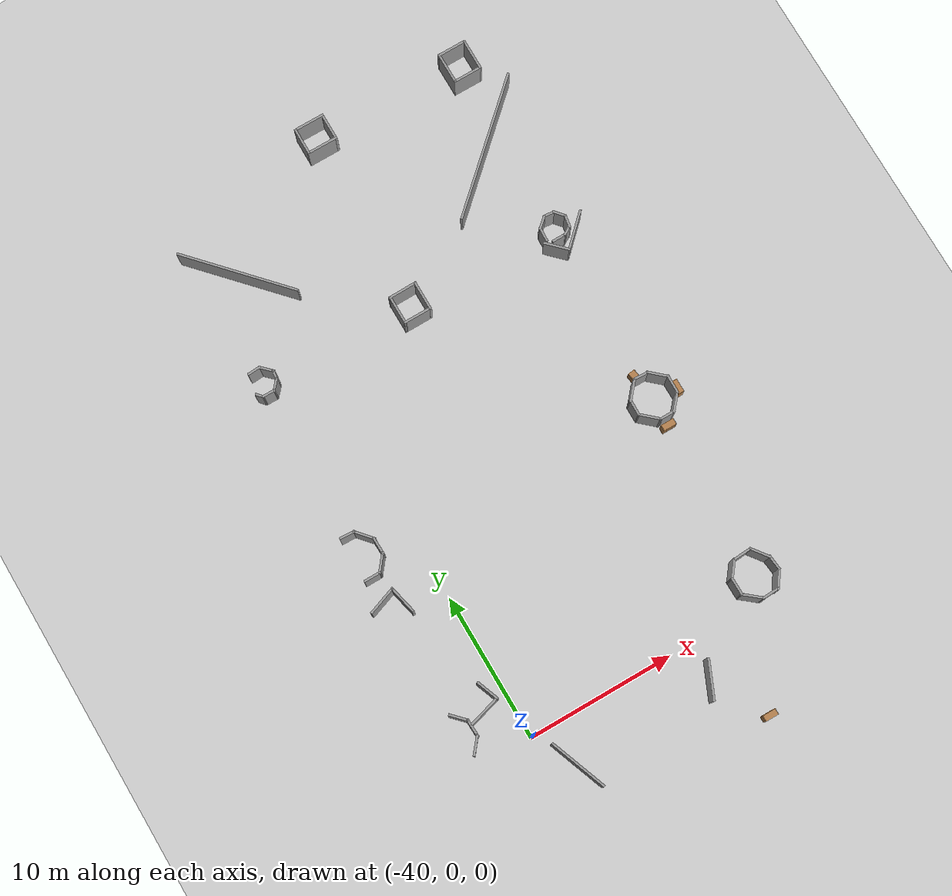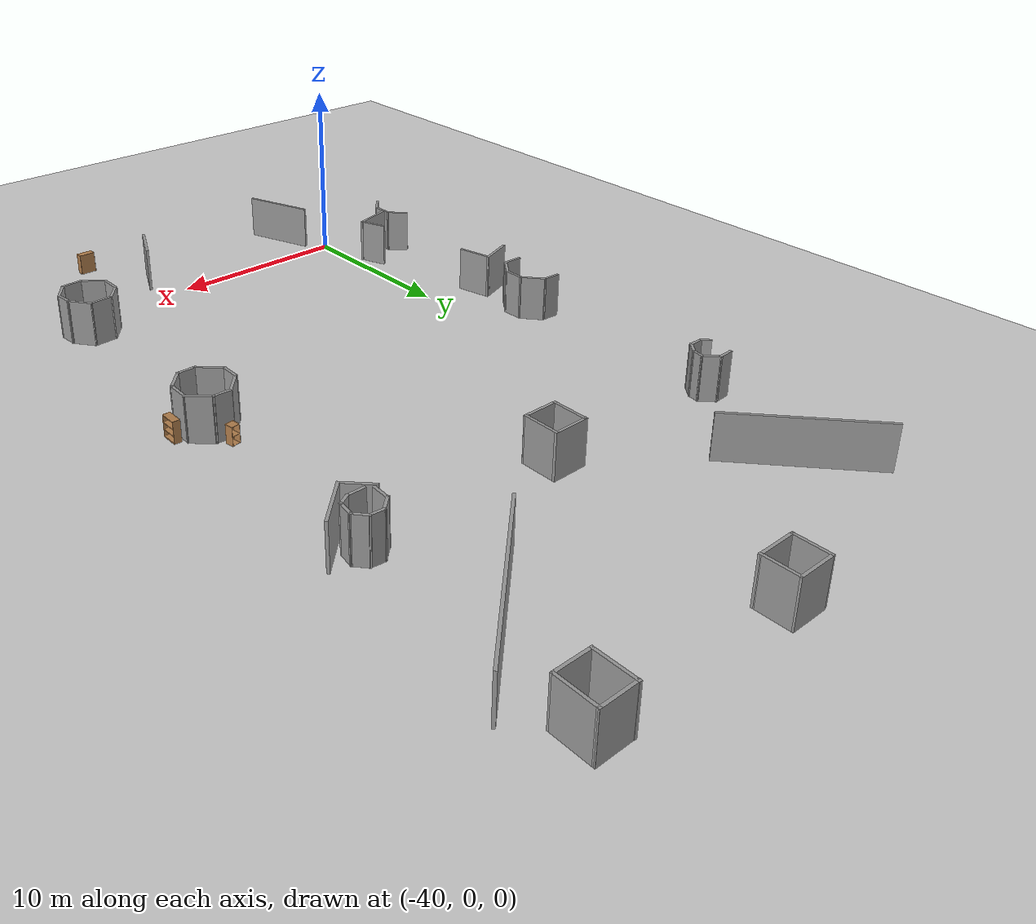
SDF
<sdf version="1.6">
 <world name="default">
  <model name="ground_plane">
   <static>1</static>
   <link name="link">
    <collision name="collision">
     <geometry><plane><normal>0 0 1</normal><size>100 100</size></plane></geometry>
     <surface><friction><ode><mu>100</mu><mu2>50</mu2></ode></friction></surface>
    </collision>
    <visual name="visual">
     <cast_shadows>0</cast_shadows>
     <geometry><plane><normal>0 0 1</normal><size>100 100</size></plane></geometry>
     <material>
      <script><uri>file://media/materials/scripts/gazebo.material</uri><name>Gazebo/Grey</name></script>
     </material>
    </visual>
   </link>
  </model>
  <model name="mall_new_reduce_size">
   <pose>-6.8092 7.5529 0 0 -0 0</pose>
   <link name="Wall_107">
    <collision name="Wall_107_Collision">
     <geometry><box><size>0.940533 0.15 2.5</size></box></geometry>
     <pose>0 0 1.25 0 -0 0</pose>
    </collision>
    <visual name="Wall_107_Visual">
     <pose>0 0 1.25 0 -0 0</pose>
     <geometry><box><size>0.940533 0.15 2.5</size></box></geometry>
     <material>
      <script><uri>file://media/materials/scripts/gazebo.material</uri><name>Gazebo/Grey</name></script>
      <ambient>1 1 1 1</ambient>
     </material>
     <meta><layer>0</layer></meta>
    </visual>
    <pose>-36.633 20.7072 0 0 -0 0.04939</pose>
   </link>
   <link name="Wall_108">
    <collision name="Wall_108_Collision">
     <geometry><box><size>1.04338 0.15 2.5</size></box></geometry>
     <pose>0 0 1.25 0 -0 0</pose>
    </collision>
    <visual name="Wall_108_Visual">
     <pose>0 0 1.25 0 -0 0</pose>
     <geometry><box><size>1.04338 0.15 2.5</size></box></geometry>
     <material>
      <script><uri>file://media/materials/scripts/gazebo.material</uri><name>Gazebo/Grey</name></script>
      <ambient>1 1 1 1</ambient>
     </material>
     <meta><layer>0</layer></meta>
    </visual>
    <pose>-35.9265 20.4122 0 0 -0 -0.780985</pose>
   </link>
   <link name="Wall_109">
    <collision name="Wall_109_Collision">
     <geometry><box><size>0.676427 0.15 2.5</size></box></geometry>
     <pose>0 0 1.25 0 -0 0</pose>
    </collision>
    <visual name="Wall_109_Visual">
     <pose>0 0 1.25 0 -0 0</pose>
     <geometry><box><size>0.676427 0.15 2.5</size></box></geometry>
     <material>
      <script><uri>file://media/materials/scripts/gazebo.material</uri><name>Gazebo/Grey</name></script>
      <ambient>1 1 1 1</ambient>
     </material>
     <meta><layer>0</layer></meta>
    </visual>
    <pose>-35.6455 19.8364 0 0 -0 -1.68757</pose>
   </link>
   <link name="Wall_110">
    <collision name="Wall_110_Collision">
     <geometry><box><size>0.945582 0.15 2.5</size></box></geometry>
     <pose>0 0 1.25 0 -0 0</pose>
    </collision>
    <visual name="Wall_110_Visual">
     <pose>0 0 1.25 0 -0 0</pose>
     <geometry><box><size>0.945582 0.15 2.5</size></box></geometry>
     <material>
      <script><uri>file://media/materials/scripts/gazebo.material</uri><name>Gazebo/Grey</name></script>
      <ambient>1 1 1 1</ambient>
     </material>
     <meta><layer>0</layer></meta>
    </visual>
    <pose>-35.9305 19.2738 0 0 -0 -2.28278</pose>
   </link>
   <link name="Wall_111">
    <collision name="Wall_111_Collision">
     <geometry><box><size>0.906136 0.15 2.5</size></box></geometry>
     <pose>0 0 1.25 0 -0 0</pose>
    </collision>
    <visual name="Wall_111_Visual">
     <pose>0 0 1.25 0 -0 0</pose>
     <geometry><box><size>0.906136 0.15 2.5</size></box></geometry>
     <material>
      <script><uri>file://media/materials/scripts/gazebo.material</uri><name>Gazebo/Grey</name></script>
      <ambient>1 1 1 1</ambient>
     </material>
     <meta><layer>0</layer></meta>
    </visual>
    <pose>-36.5684 18.981 0 0 -0 3.13422</pose>
   </link>
   <link name="Wall_112">
    <collision name="Wall_112_Collision">
     <geometry><box><size>0.599997 0.15 2.5</size></box></geometry>
     <pose>0 0 1.25 0 -0 0</pose>
    </collision>
    <visual name="Wall_112_Visual">
     <pose>0 0 1.25 0 -0 0</pose>
     <geometry><box><size>0.599997 0.15 2.5</size></box></geometry>
     <material>
      <script><uri>file://media/materials/scripts/gazebo.material</uri><name>Gazebo/Grey</name></script>
      <ambient>1 1 1 1</ambient>
     </material>
     <meta><layer>0</layer></meta>
    </visual>
    <pose>-37.1032 19.1505 0 0 -0 2.30701</pose>
   </link>
   <link name="Wall_120">
    <collision name="Wall_120_Collision">
     <geometry><box><size>2 0.15 2.5</size></box></geometry>
     <pose>0 0 1.25 0 -0 0</pose>
    </collision>
    <visual name="Wall_120_Visual">
     <pose>0 0 1.25 0 -0 0</pose>
     <geometry><box><size>2 0.15 2.5</size></box></geometry>
     <material>
      <script><uri>file://media/materials/scripts/gazebo.material</uri><name>Gazebo/Grey</name></script>
      <ambient>1 1 1 1</ambient>
     </material>
     <meta><layer>0</layer></meta>
    </visual>
    <pose>-26.9558 19.541 0 0 -0 -1.5708</pose>
   </link>
   <link name="Wall_121">
    <collision name="Wall_121_Collision">
     <geometry><box><size>1.9668 0.15 2.5</size></box></geometry>
     <pose>0 0 1.25 0 -0 0</pose>
    </collision>
    <visual name="Wall_121_Visual">
     <pose>0 0 1.25 0 -0 0</pose>
     <geometry><box><size>1.9668 0.15 2.5</size></box></geometry>
     <material>
      <script><uri>file://media/materials/scripts/gazebo.material</uri><name>Gazebo/Grey</name></script>
      <ambient>1 1 1 1</ambient>
     </material>
     <meta><layer>0</layer></meta>
    </visual>
    <pose>-26.0474 18.619 0 0 -0 0.003382</pose>
   </link>
   <link name="Wall_122">
    <collision name="Wall_122_Collision">
     <geometry><box><size>2.02653 0.15 2.5</size></box></geometry>
     <pose>0 0 1.25 0 -0 0</pose>
    </collision>
    <visual name="Wall_122_Visual">
     <pose>0 0 1.25 0 -0 0</pose>
     <geometry><box><size>2.02653 0.15 2.5</size></box></geometry>
     <material>
      <script><uri>file://media/materials/scripts/gazebo.material</uri><name>Gazebo/Grey</name></script>
      <ambient>1 1 1 1</ambient>
     </material>
     <meta><layer>0</layer></meta>
    </visual>
    <pose>-25.1383 19.554 0 0 -0 1.57003</pose>
   </link>
   <link name="Wall_123">
    <collision name="Wall_123_Collision">
     <geometry><box><size>1.99983 0.15 2.5</size></box></geometry>
     <pose>0 0 1.25 0 -0 0</pose>
    </collision>
    <visual name="Wall_123_Visual">
     <pose>0 0 1.25 0 -0 0</pose>
     <geometry><box><size>1.99983 0.15 2.5</size></box></geometry>
     <material>
      <script><uri>file://media/materials/scripts/gazebo.material</uri><name>Gazebo/Grey</name></script>
      <ambient>1 1 1 1</ambient>
     </material>
     <meta><layer>0</layer></meta>
    </visual>
    <pose>-26.056 20.4954 0 0 -0 -3.12426</pose>
   </link>
   <link name="Wall_23">
    <collision name="Wall_23_Collision">
     <geometry><box><size>8.04183 0.15 2.5</size></box></geometry>
     <pose>0 0 1.25 0 -0 0</pose>
    </collision>
    <visual name="Wall_23_Visual">
     <pose>0 0 1.25 0 -0 0</pose>
     <geometry><box><size>8.04183 0.15 2.5</size></box></geometry>
     <material>
      <script><uri>file://media/materials/scripts/gazebo.material</uri><name>Gazebo/Grey</name></script>
      <ambient>1 1 1 1</ambient>
     </material>
     <meta><layer>0</layer></meta>
    </visual>
    <pose>-34.4403 26.7968 0 0 -0 -0.828664</pose>
   </link>
   <link name="Wall_299">
    <collision name="Wall_299_Collision">
     <geometry><box><size>1.25244 0.15 2.5</size></box></geometry>
     <pose>0 0 1.25 0 -0 0</pose>
    </collision>
    <visual name="Wall_299_Visual">
     <pose>0 0 1.25 0 -0 0</pose>
     <geometry><box><size>1.25244 0.15 2.5</size></box></geometry>
     <material>
      <script><uri>file://media/materials/scripts/gazebo.material</uri><name>Gazebo/Grey</name></script>
      <ambient>1 1 1 1</ambient>
     </material>
     <meta><layer>0</layer></meta>
    </visual>
    <pose>-16.3634 -4.50577 0 0 -0 0.066556</pose>
   </link>
   <link name="Wall_300">
    <collision name="Wall_300_Collision">
     <geometry><box><size>1.44179 0.15 2.5</size></box></geometry>
     <pose>0 0 1.25 0 -0 0</pose>
    </collision>
    <visual name="Wall_300_Visual">
     <pose>0 0 1.25 0 -0 0</pose>
     <geometry><box><size>1.44179 0.15 2.5</size></box></geometry>
     <material>
      <script><uri>file://media/materials/scripts/gazebo.material</uri><name>Gazebo/Grey</name></script>
      <ambient>1 1 1 1</ambient>
     </material>
     <meta><layer>0</layer></meta>
    </visual>
    <pose>-15.4086 -4.98387 0 0 -0 -0.922283</pose>
   </link>
   <link name="Wall_301">
    <collision name="Wall_301_Collision">
     <geometry><box><size>1.09033 0.15 2.5</size></box></geometry>
     <pose>0 0 1.25 0 -0 0</pose>
    </collision>
    <visual name="Wall_301_Visual">
     <pose>0 0 1.25 0 -0 0</pose>
     <geometry><box><size>1.09033 0.15 2.5</size></box></geometry>
     <material>
      <script><uri>file://media/materials/scripts/gazebo.material</uri><name>Gazebo/Grey</name></script>
      <ambient>1 1 1 1</ambient>
     </material>
     <meta><layer>0</layer></meta>
    </visual>
    <pose>-14.9682 -5.95144 0 0 -0 -1.4636</pose>
   </link>
   <link name="Wall_302">
    <collision name="Wall_302_Collision">
     <geometry><box><size>1.37103 0.15 2.5</size></box></geometry>
     <pose>0 0 1.25 0 -0 0</pose>
    </collision>
    <visual name="Wall_302_Visual">
     <pose>0 0 1.25 0 -0 0</pose>
     <geometry><box><size>1.37103 0.15 2.5</size></box></geometry>
     <material>
      <script><uri>file://media/materials/scripts/gazebo.material</uri><name>Gazebo/Grey</name></script>
      <ambient>1 1 1 1</ambient>
     </material>
     <meta><layer>0</layer></meta>
    </visual>
    <pose>-15.2636 -6.93047 0 0 -0 -2.17283</pose>
   </link>
   <link name="Wall_303">
    <collision name="Wall_303_Collision">
     <geometry><box><size>1.23632 0.15 2.5</size></box></geometry>
     <pose>0 0 1.25 0 -0 0</pose>
    </collision>
    <visual name="Wall_303_Visual">
     <pose>0 0 1.25 0 -0 0</pose>
     <geometry><box><size>1.23632 0.15 2.5</size></box></geometry>
     <material>
      <script><uri>file://media/materials/scripts/gazebo.material</uri><name>Gazebo/Grey</name></script>
      <ambient>1 1 1 1</ambient>
     </material>
     <meta><layer>0</layer></meta>
    </visual>
    <pose>-16.1437 -7.44622 0 0 -0 -3.10299</pose>
   </link>
   <link name="Wall_304">
    <collision name="Wall_304_Collision">
     <geometry><box><size>1.52701 0.15 2.5</size></box></geometry>
     <pose>0 0 1.25 0 -0 0</pose>
    </collision>
    <visual name="Wall_304_Visual">
     <pose>0 0 1.25 0 -0 0</pose>
     <geometry><box><size>1.52701 0.15 2.5</size></box></geometry>
     <material>
      <script><uri>file://media/materials/scripts/gazebo.material</uri><name>Gazebo/Grey</name></script>
      <ambient>1 1 1 1</ambient>
     </material>
     <meta><layer>0</layer></meta>
    </visual>
    <pose>-17.2005 -7.03707 0 0 -0 2.45115</pose>
   </link>
   <link name="Wall_305">
    <collision name="Wall_305_Collision">
     <geometry><box><size>1.2495 0.15 2.5</size></box></geometry>
     <pose>0 0 1.25 0 -0 0</pose>
    </collision>
    <visual name="Wall_305_Visual">
     <pose>0 0 1.25 0 -0 0</pose>
     <geometry><box><size>1.2495 0.15 2.5</size></box></geometry>
     <material>
      <script><uri>file://media/materials/scripts/gazebo.material</uri><name>Gazebo/Grey</name></script>
      <ambient>1 1 1 1</ambient>
     </material>
     <meta><layer>0</layer></meta>
    </visual>
    <pose>-17.7276 -6.04885 0 0 -0 1.57925</pose>
   </link>
   <link name="Wall_306">
    <collision name="Wall_306_Collision">
     <geometry><box><size>1.3668 0.15 2.5</size></box></geometry>
     <pose>0 0 1.25 0 -0 0</pose>
    </collision>
    <visual name="Wall_306_Visual">
     <pose>0 0 1.25 0 -0 0</pose>
     <geometry><box><size>1.3668 0.15 2.5</size></box></geometry>
     <material>
      <script><uri>file://media/materials/scripts/gazebo.material</uri><name>Gazebo/Grey</name></script>
      <ambient>1 1 1 1</ambient>
     </material>
     <meta><layer>0</layer></meta>
    </visual>
    <pose>-17.3575 -5.01145 0 0 -0 0.907215</pose>
   </link>
   <link name="Wall_309">
    <collision name="Wall_309_Collision">
     <geometry><box><size>2.66375 0.15 2.5</size></box></geometry>
     <pose>0 0 1.25 0 -0 0</pose>
    </collision>
    <visual name="Wall_309_Visual">
     <pose>0 0 1.25 0 -0 0</pose>
     <geometry><box><size>2.66375 0.15 2.5</size></box></geometry>
     <material>
      <script><uri>file://media/materials/scripts/gazebo.material</uri><name>Gazebo/Grey</name></script>
      <ambient>1 1 1 1</ambient>
     </material>
     <meta><layer>0</layer></meta>
    </visual>
    <pose>-22.0492 -10.0757 0 0 -0 1.15356</pose>
   </link>
   <link name="Wall_317">
    <collision name="Wall_317_Collision">
     <geometry><box><size>4.0797 0.15 2.5</size></box></geometry>
     <pose>0 0 1.25 0 -0 0</pose>
    </collision>
    <visual name="Wall_317_Visual">
     <pose>0 0 1.25 0 -0 0</pose>
     <geometry><box><size>4.0797 0.15 2.5</size></box></geometry>
     <material>
      <script><uri>file://media/materials/scripts/gazebo.material</uri><name>Gazebo/Grey</name></script>
      <ambient>1 1 1 1</ambient>
     </material>
     <meta><layer>0</layer></meta>
    </visual>
    <pose>-31.6512 -10.3768 0 0 -0 -1.21551</pose>
   </link>
   <link name="Wall_330">
    <collision name="Wall_330_Collision">
     <geometry><box><size>1.01977 0.15 2.5</size></box></geometry>
     <pose>0 0 1.25 0 -0 0</pose>
    </collision>
    <visual name="Wall_330_Visual">
     <pose>0 0 1.25 0 -0 0</pose>
     <geometry><box><size>1.01977 0.15 2.5</size></box></geometry>
     <material>
      <script><uri>file://media/materials/scripts/gazebo.material</uri><name>Gazebo/Grey</name></script>
      <ambient>1 1 1 1</ambient>
     </material>
     <meta><layer>0</layer></meta>
    </visual>
    <pose>-15.936 8.2086 0 0 -0 -0.033263</pose>
   </link>
   <link name="Wall_331">
    <collision name="Wall_331_Collision">
     <geometry><box><size>1.45443 0.15 2.5</size></box></geometry>
     <pose>0 0 1.25 0 -0 0</pose>
    </collision>
    <visual name="Wall_331_Visual">
     <pose>0 0 1.25 0 -0 0</pose>
     <geometry><box><size>1.45443 0.15 2.5</size></box></geometry>
     <material>
      <script><uri>file://media/materials/scripts/gazebo.material</uri><name>Gazebo/Grey</name></script>
      <ambient>1 1 1 1</ambient>
     </material>
     <meta><layer>0</layer></meta>
    </visual>
    <pose>-15.0144 7.76987 0 0 -0 -0.727873</pose>
   </link>
   <link name="Wall_332">
    <collision name="Wall_332_Collision">
     <geometry><box><size>1.29894 0.15 2.5</size></box></geometry>
     <pose>0 0 1.25 0 -0 0</pose>
    </collision>
    <visual name="Wall_332_Visual">
     <pose>0 0 1.25 0 -0 0</pose>
     <geometry><box><size>1.29894 0.15 2.5</size></box></geometry>
     <material>
      <script><uri>file://media/materials/scripts/gazebo.material</uri><name>Gazebo/Grey</name></script>
      <ambient>1 1 1 1</ambient>
     </material>
     <meta><layer>0</layer></meta>
    </visual>
    <pose>-14.5323 6.75187 0 0 -0 -1.57919</pose>
   </link>
   <link name="Wall_333">
    <collision name="Wall_333_Collision">
     <geometry><box><size>1.40407 0.15 2.5</size></box></geometry>
     <pose>0 0 1.25 0 -0 0</pose>
    </collision>
    <visual name="Wall_333_Visual">
     <pose>0 0 1.25 0 -0 0</pose>
     <geometry><box><size>1.40407 0.15 2.5</size></box></geometry>
     <material>
      <script><uri>file://media/materials/scripts/gazebo.material</uri><name>Gazebo/Grey</name></script>
      <ambient>1 1 1 1</ambient>
     </material>
     <meta><layer>0</layer></meta>
    </visual>
    <pose>-14.9612 5.70636 0 0 -0 -2.29237</pose>
   </link>
   <link name="Wall_334">
    <collision name="Wall_334_Collision">
     <geometry><box><size>1.10611 0.15 2.5</size></box></geometry>
     <pose>0 0 1.25 0 -0 0</pose>
    </collision>
    <visual name="Wall_334_Visual">
     <pose>0 0 1.25 0 -0 0</pose>
     <geometry><box><size>1.10611 0.15 2.5</size></box></geometry>
     <material>
      <script><uri>file://media/materials/scripts/gazebo.material</uri><name>Gazebo/Grey</name></script>
      <ambient>1 1 1 1</ambient>
     </material>
     <meta><layer>0</layer></meta>
    </visual>
    <pose>-15.8537 5.24013 0 0 -0 -3.13151</pose>
   </link>
   <link name="Wall_335">
    <collision name="Wall_335_Collision">
     <geometry><box><size>1.56516 0.15 2.5</size></box></geometry>
     <pose>0 0 1.25 0 -0 0</pose>
    </collision>
    <visual name="Wall_335_Visual">
     <pose>0 0 1.25 0 -0 0</pose>
     <geometry><box><size>1.56516 0.15 2.5</size></box></geometry>
     <material>
      <script><uri>file://media/materials/scripts/gazebo.material</uri><name>Gazebo/Grey</name></script>
      <ambient>1 1 1 1</ambient>
     </material>
     <meta><layer>0</layer></meta>
    </visual>
    <pose>-16.8295 5.70779 0 0 -0 2.41041</pose>
   </link>
   <link name="Wall_336">
    <collision name="Wall_336_Collision">
     <geometry><box><size>1.15225 0.15 2.5</size></box></geometry>
     <pose>0 0 1.25 0 -0 0</pose>
    </collision>
    <visual name="Wall_336_Visual">
     <pose>0 0 1.25 0 -0 0</pose>
     <geometry><box><size>1.15225 0.15 2.5</size></box></geometry>
     <material>
      <script><uri>file://media/materials/scripts/gazebo.material</uri><name>Gazebo/Grey</name></script>
      <ambient>1 1 1 1</ambient>
     </material>
     <meta><layer>0</layer></meta>
    </visual>
    <pose>-17.3514 6.67174 0 0 -0 1.56118</pose>
   </link>
   <link name="Wall_337">
    <collision name="Wall_337_Collision">
     <geometry><box><size>1.51537 0.15 2.5</size></box></geometry>
     <pose>0 0 1.25 0 -0 0</pose>
    </collision>
    <visual name="Wall_337_Visual">
     <pose>0 0 1.25 0 -0 0</pose>
     <geometry><box><size>1.51537 0.15 2.5</size></box></geometry>
     <material>
      <script><uri>file://media/materials/scripts/gazebo.material</uri><name>Gazebo/Grey</name></script>
      <ambient>1 1 1 1</ambient>
     </material>
     <meta><layer>0</layer></meta>
    </visual>
    <pose>-16.9005 7.68 0 0 -0 0.858721</pose>
   </link>
   <link name="Wall_340">
    <collision name="Wall_340_Collision">
     <geometry><box><size>1.61603 0.15 2.5</size></box></geometry>
     <pose>0 0 1.25 0 -0 0</pose>
    </collision>
    <visual name="Wall_340_Visual">
     <pose>0 0 1.25 0 -0 0</pose>
     <geometry><box><size>1.61603 0.15 2.5</size></box></geometry>
     <material>
      <script><uri>file://media/materials/scripts/gazebo.material</uri><name>Gazebo/Grey</name></script>
      <ambient>1 1 1 1</ambient>
     </material>
     <meta><layer>0</layer></meta>
    </visual>
    <pose>-34.1129 -3.77256 0 0 -0 -1.20963</pose>
   </link>
   <link name="Wall_341">
    <collision name="Wall_341_Collision">
     <geometry><box><size>2.32014 0.15 2.5</size></box></geometry>
     <pose>0 0 1.25 0 -0 0</pose>
    </collision>
    <visual name="Wall_341_Visual">
     <pose>0 0 1.25 0 -0 0</pose>
     <geometry><box><size>2.32014 0.15 2.5</size></box></geometry>
     <material>
      <script><uri>file://media/materials/scripts/gazebo.material</uri><name>Gazebo/Grey</name></script>
      <ambient>1 1 1 1</ambient>
     </material>
     <meta><layer>0</layer></meta>
    </visual>
    <pose>-34.8895 -4.75363 0 0 -0 -2.86593</pose>
   </link>
   <link name="Wall_345">
    <collision name="Wall_345_Collision">
     <geometry><box><size>1.30987 0.15 2.5</size></box></geometry>
     <pose>0 0 1.25 0 -0 0</pose>
    </collision>
    <visual name="Wall_345_Visual">
     <pose>0 0 1.25 0 -0 0</pose>
     <geometry><box><size>1.30987 0.15 2.5</size></box></geometry>
     <material>
      <script><uri>file://media/materials/scripts/gazebo.material</uri><name>Gazebo/Grey</name></script>
      <ambient>1 1 1 1</ambient>
     </material>
     <meta><layer>0</layer></meta>
    </visual>
    <pose>-36.4425 -4.29785 0 0 -0 -0.805961</pose>
   </link>
   <link name="Wall_346">
    <collision name="Wall_346_Collision">
     <geometry><box><size>1.24209 0.15 2.5</size></box></geometry>
     <pose>0 0 1.25 0 -0 0</pose>
    </collision>
    <visual name="Wall_346_Visual">
     <pose>0 0 1.25 0 -0 0</pose>
     <geometry><box><size>1.24209 0.15 2.5</size></box></geometry>
     <material>
      <script><uri>file://media/materials/scripts/gazebo.material</uri><name>Gazebo/Grey</name></script>
      <ambient>1 1 1 1</ambient>
     </material>
     <meta><layer>0</layer></meta>
    </visual>
    <pose>-36.0325 -5.24519 0 0 -0 -1.53991</pose>
   </link>
   <link name="Wall_347">
    <collision name="Wall_347_Collision">
     <geometry><box><size>1.31923 0.15 2.5</size></box></geometry>
     <pose>0 0 1.25 0 -0 0</pose>
    </collision>
    <visual name="Wall_347_Visual">
     <pose>0 0 1.25 0 -0 0</pose>
     <geometry><box><size>1.31923 0.15 2.5</size></box></geometry>
     <material>
      <script><uri>file://media/materials/scripts/gazebo.material</uri><name>Gazebo/Grey</name></script>
      <ambient>1 1 1 1</ambient>
     </material>
     <meta><layer>0</layer></meta>
    </visual>
    <pose>-36.396 -6.24199 0 0 -0 -2.26043</pose>
   </link>
   <link name="Wall_354">
    <collision name="Wall_354_Collision">
     <geometry><box><size>2.05857 0.15 2.5</size></box></geometry>
     <pose>0 0 1.25 0 -0 0</pose>
    </collision>
    <visual name="Wall_354_Visual">
     <pose>0 0 1.25 0 -0 0</pose>
     <geometry><box><size>2.05857 0.15 2.5</size></box></geometry>
     <material>
      <script><uri>file://media/materials/scripts/gazebo.material</uri><name>Gazebo/Grey</name></script>
      <ambient>1 1 1 1</ambient>
     </material>
     <meta><layer>0</layer></meta>
    </visual>
    <pose>-36.9144 4.20159 0 0 -0 0.346103</pose>
   </link>
   <link name="Wall_355">
    <collision name="Wall_355_Collision">
     <geometry><box><size>1.98834 0.15 2.5</size></box></geometry>
     <pose>0 0 1.25 0 -0 0</pose>
    </collision>
    <visual name="Wall_355_Visual">
     <pose>0 0 1.25 0 -0 0</pose>
     <geometry><box><size>1.98834 0.15 2.5</size></box></geometry>
     <material>
      <script><uri>file://media/materials/scripts/gazebo.material</uri><name>Gazebo/Grey</name></script>
      <ambient>1 1 1 1</ambient>
     </material>
     <meta><layer>0</layer></meta>
    </visual>
    <pose>-35.8124 3.62071 0 0 -0 -1.34665</pose>
   </link>
   <link name="Wall_38">
    <collision name="Wall_38_Collision">
     <geometry><box><size>1.87759 0.15 2.5</size></box></geometry>
     <pose>0 0 1.25 0 -0 0</pose>
    </collision>
    <visual name="Wall_38_Visual">
     <pose>0 0 1.25 0 -0 0</pose>
     <geometry><box><size>1.87759 0.15 2.5</size></box></geometry>
     <material>
      <script><uri>file://media/materials/scripts/gazebo.material</uri><name>Gazebo/Grey</name></script>
      <ambient>1 1 1 1</ambient>
     </material>
     <meta><layer>0</layer></meta>
    </visual>
    <pose>-26.693 32.1923 0 0 -0 -1.57586</pose>
   </link>
   <link name="Wall_381">
    <collision name="Wall_381_Collision">
     <geometry><box><size>1.0607 0.15 2.5</size></box></geometry>
     <pose>0 0 1.25 0 -0 0</pose>
    </collision>
    <visual name="Wall_381_Visual">
     <pose>0 0 1.25 0 -0 0</pose>
     <geometry><box><size>1.0607 0.15 2.5</size></box></geometry>
     <material>
      <script><uri>file://media/materials/scripts/gazebo.material</uri><name>Gazebo/Grey</name></script>
      <ambient>1 1 1 1</ambient>
     </material>
     <meta><layer>0</layer></meta>
    </visual>
    <pose>-36.7557 8.79735 0 0 -0 -0.048953</pose>
   </link>
   <link name="Wall_382">
    <collision name="Wall_382_Collision">
     <geometry><box><size>1.48403 0.15 2.5</size></box></geometry>
     <pose>0 0 1.25 0 -0 0</pose>
    </collision>
    <visual name="Wall_382_Visual">
     <pose>0 0 1.25 0 -0 0</pose>
     <geometry><box><size>1.48403 0.15 2.5</size></box></geometry>
     <material>
      <script><uri>file://media/materials/scripts/gazebo.material</uri><name>Gazebo/Grey</name></script>
      <ambient>1 1 1 1</ambient>
     </material>
     <meta><layer>0</layer></meta>
    </visual>
    <pose>-35.8638 8.28201 0 0 -0 -0.857017</pose>
   </link>
   <link name="Wall_383">
    <collision name="Wall_383_Collision">
     <geometry><box><size>1.20072 0.15 2.5</size></box></geometry>
     <pose>0 0 1.25 0 -0 0</pose>
    </collision>
    <visual name="Wall_383_Visual">
     <pose>0 0 1.25 0 -0 0</pose>
     <geometry><box><size>1.20072 0.15 2.5</size></box></geometry>
     <material>
      <script><uri>file://media/materials/scripts/gazebo.material</uri><name>Gazebo/Grey</name></script>
      <ambient>1 1 1 1</ambient>
     </material>
     <meta><layer>0</layer></meta>
    </visual>
    <pose>-35.4271 7.25246 0 0 -0 -1.54957</pose>
   </link>
   <link name="Wall_384">
    <collision name="Wall_384_Collision">
     <geometry><box><size>1.37998 0.15 2.5</size></box></geometry>
     <pose>0 0 1.25 0 -0 0</pose>
    </collision>
    <visual name="Wall_384_Visual">
     <pose>0 0 1.25 0 -0 0</pose>
     <geometry><box><size>1.37998 0.15 2.5</size></box></geometry>
     <material>
      <script><uri>file://media/materials/scripts/gazebo.material</uri><name>Gazebo/Grey</name></script>
      <ambient>1 1 1 1</ambient>
     </material>
     <meta><layer>0</layer></meta>
    </visual>
    <pose>-35.8104 6.24615 0 0 -0 -2.24365</pose>
   </link>
   <link name="Wall_385">
    <collision name="Wall_385_Collision">
     <geometry><box><size>1.17938 0.15 2.5</size></box></geometry>
     <pose>0 0 1.25 0 -0 0</pose>
    </collision>
    <visual name="Wall_385_Visual">
     <pose>0 0 1.25 0 -0 0</pose>
     <geometry><box><size>1.17938 0.15 2.5</size></box></geometry>
     <material>
      <script><uri>file://media/materials/scripts/gazebo.material</uri><name>Gazebo/Grey</name></script>
      <ambient>1 1 1 1</ambient>
     </material>
     <meta><layer>0</layer></meta>
    </visual>
    <pose>-36.6967 5.7652 0 0 -0 3.14159</pose>
   </link>
   <link name="Wall_40">
    <collision name="Wall_40_Collision">
     <geometry><box><size>2.12677 0.15 2.5</size></box></geometry>
     <pose>0 0 1.25 0 -0 0</pose>
    </collision>
    <visual name="Wall_40_Visual">
     <pose>0 0 1.25 0 -0 0</pose>
     <geometry><box><size>2.12677 0.15 2.5</size></box></geometry>
     <material>
      <script><uri>file://media/materials/scripts/gazebo.material</uri><name>Gazebo/Grey</name></script>
      <ambient>1 1 1 1</ambient>
     </material>
     <meta><layer>0</layer></meta>
    </visual>
    <pose>-25.709 31.3193 0 0 -0 -0.000501</pose>
   </link>
   <link name="Wall_42">
    <collision name="Wall_42_Collision">
     <geometry><box><size>1.90642 0.15 2.5</size></box></geometry>
     <pose>0 0 1.25 0 -0 0</pose>
    </collision>
    <visual name="Wall_42_Visual">
     <pose>0 0 1.25 0 -0 0</pose>
     <geometry><box><size>1.90642 0.15 2.5</size></box></geometry>
     <material>
      <script><uri>file://media/materials/scripts/gazebo.material</uri><name>Gazebo/Grey</name></script>
      <ambient>1 1 1 1</ambient>
     </material>
     <meta><layer>0</layer></meta>
    </visual>
    <pose>-24.7208 32.1883 0 0 -0 1.57103</pose>
   </link>
   <link name="Wall_43">
    <collision name="Wall_43_Collision">
     <geometry><box><size>2 0.15 2.5</size></box></geometry>
     <pose>0 0 1.25 0 -0 0</pose>
    </collision>
    <visual name="Wall_43_Visual">
     <pose>0 0 1.25 0 -0 0</pose>
     <geometry><box><size>2 0.15 2.5</size></box></geometry>
     <material>
      <script><uri>file://media/materials/scripts/gazebo.material</uri><name>Gazebo/Grey</name></script>
      <ambient>1 1 1 1</ambient>
     </material>
     <meta><layer>0</layer></meta>
    </visual>
    <pose>-25.646 33.0752 0 0 -0 3.14159</pose>
   </link>
   <link name="Wall_45">
    <collision name="Wall_45_Collision">
     <geometry><box><size>2.19239 0.15 2.5</size></box></geometry>
     <pose>0 0 1.25 0 -0 0</pose>
    </collision>
    <visual name="Wall_45_Visual">
     <pose>0 0 1.25 0 -0 0</pose>
     <geometry><box><size>2.19239 0.15 2.5</size></box></geometry>
     <material>
      <script><uri>file://media/materials/scripts/gazebo.material</uri><name>Gazebo/Grey</name></script>
      <ambient>1 1 1 1</ambient>
     </material>
     <meta><layer>0</layer></meta>
    </visual>
    <pose>-16.247 31.7587 0 0 -0 -1.5708</pose>
   </link>
   <link name="Wall_46">
    <collision name="Wall_46_Collision">
     <geometry><box><size>2 0.15 2.5</size></box></geometry>
     <pose>0 0 1.25 0 -0 0</pose>
    </collision>
    <visual name="Wall_46_Visual">
     <pose>0 0 1.25 0 -0 0</pose>
     <geometry><box><size>2 0.15 2.5</size></box></geometry>
     <material>
      <script><uri>file://media/materials/scripts/gazebo.material</uri><name>Gazebo/Grey</name></script>
      <ambient>1 1 1 1</ambient>
     </material>
     <meta><layer>0</layer></meta>
    </visual>
    <pose>-15.322 30.7375 0 0 -0 0</pose>
   </link>
   <link name="Wall_47">
    <collision name="Wall_47_Collision">
     <geometry><box><size>2.17492 0.15 2.5</size></box></geometry>
     <pose>0 0 1.25 0 -0 0</pose>
    </collision>
    <visual name="Wall_47_Visual">
     <pose>0 0 1.25 0 -0 0</pose>
     <geometry><box><size>2.17492 0.15 2.5</size></box></geometry>
     <material>
      <script><uri>file://media/materials/scripts/gazebo.material</uri><name>Gazebo/Grey</name></script>
      <ambient>1 1 1 1</ambient>
     </material>
     <meta><layer>0</layer></meta>
    </visual>
    <pose>-14.3927 31.7499 0 0 -0 1.56648</pose>
   </link>
   <link name="Wall_48">
    <collision name="Wall_48_Collision">
     <geometry><box><size>2.0172 0.15 2.5</size></box></geometry>
     <pose>0 0 1.25 0 -0 0</pose>
    </collision>
    <visual name="Wall_48_Visual">
     <pose>0 0 1.25 0 -0 0</pose>
     <geometry><box><size>2.0172 0.15 2.5</size></box></geometry>
     <material>
      <script><uri>file://media/materials/scripts/gazebo.material</uri><name>Gazebo/Grey</name></script>
      <ambient>1 1 1 1</ambient>
     </material>
     <meta><layer>0</layer></meta>
    </visual>
    <pose>-15.3219 32.7668 0 0 -0 -3.13691</pose>
   </link>
   <link name="Wall_57">
    <collision name="Wall_57_Collision">
     <geometry><box><size>10.1653 0.15 2.5</size></box></geometry>
     <pose>0 0 1.25 0 -0 0</pose>
    </collision>
    <visual name="Wall_57_Visual">
     <pose>0 0 1.25 0 -0 0</pose>
     <geometry><box><size>10.1653 0.15 2.5</size></box></geometry>
     <material>
      <script><uri>file://media/materials/scripts/gazebo.material</uri><name>Gazebo/Grey</name></script>
      <ambient>1 1 1 1</ambient>
     </material>
     <meta><layer>0</layer></meta>
    </visual>
    <pose>-16.7712 26.0648 0 0 -0 0.74156</pose>
   </link>
   <link name="Wall_62">
    <collision name="Wall_62_Collision">
     <geometry><box><size>1.75 0.15 2.5</size></box></geometry>
     <pose>0 0 1.25 0 -0 0</pose>
    </collision>
    <visual name="Wall_62_Visual">
     <pose>0 0 1.25 0 -0 0</pose>
     <geometry><box><size>1.75 0.15 2.5</size></box></geometry>
     <material>
      <script><uri>file://media/materials/scripts/gazebo.material</uri><name>Gazebo/Grey</name></script>
      <ambient>1 1 1 1</ambient>
     </material>
     <meta><layer>0</layer></meta>
    </visual>
    <pose>-16.2089 18.0457 0 0 -0 -0.785398</pose>
   </link>
   <link name="Wall_63">
    <collision name="Wall_63_Collision">
     <geometry><box><size>2.76682 0.15 2.5</size></box></geometry>
     <pose>0 0 1.25 0 -0 0</pose>
    </collision>
    <visual name="Wall_63_Visual">
     <pose>0 0 1.25 0 -0 0</pose>
     <geometry><box><size>2.76682 0.15 2.5</size></box></geometry>
     <material>
      <script><uri>file://media/materials/scripts/gazebo.material</uri><name>Gazebo/Grey</name></script>
      <ambient>1 1 1 1</ambient>
     </material>
     <meta><layer>0</layer></meta>
    </visual>
    <pose>-14.7009 18.3877 0 0 -0 0.766646</pose>
   </link>
   <link name="Wall_66">
    <collision name="Wall_66_Collision">
     <geometry><box><size>1 0.15 2.5</size></box></geometry>
     <pose>0 0 1.25 0 -0 0</pose>
    </collision>
    <visual name="Wall_66_Visual">
     <pose>0 0 1.25 0 -0 0</pose>
     <geometry><box><size>1 0.15 2.5</size></box></geometry>
     <material>
      <script><uri>file://media/materials/scripts/gazebo.material</uri><name>Gazebo/Grey</name></script>
      <ambient>1 1 1 1</ambient>
     </material>
     <meta><layer>0</layer></meta>
    </visual>
    <pose>-15.806 18.4495 0 0 -0 0</pose>
   </link>
   <link name="Wall_67">
    <collision name="Wall_67_Collision">
     <geometry><box><size>0.75 0.15 2.5</size></box></geometry>
     <pose>0 0 1.25 0 -0 0</pose>
    </collision>
    <visual name="Wall_67_Visual">
     <pose>0 0 1.25 0 -0 0</pose>
     <geometry><box><size>0.75 0.15 2.5</size></box></geometry>
     <material>
      <script><uri>file://media/materials/scripts/gazebo.material</uri><name>Gazebo/Grey</name></script>
      <ambient>1 1 1 1</ambient>
     </material>
     <meta><layer>0</layer></meta>
    </visual>
    <pose>-15.1212 18.5995 0 0 -0 0.523599</pose>
   </link>
   <link name="Wall_68">
    <collision name="Wall_68_Collision">
     <geometry><box><size>0.923783 0.15 2.5</size></box></geometry>
     <pose>0 0 1.25 0 -0 0</pose>
    </collision>
    <visual name="Wall_68_Visual">
     <pose>0 0 1.25 0 -0 0</pose>
     <geometry><box><size>0.923783 0.15 2.5</size></box></geometry>
     <material>
      <script><uri>file://media/materials/scripts/gazebo.material</uri><name>Gazebo/Grey</name></script>
      <ambient>1 1 1 1</ambient>
     </material>
     <meta><layer>0</layer></meta>
    </visual>
    <pose>-14.7977 19.1311 0 0 -0 1.4053</pose>
   </link>
   <link name="Wall_69">
    <collision name="Wall_69_Collision">
     <geometry><box><size>0.920137 0.15 2.5</size></box></geometry>
     <pose>0 0 1.25 0 -0 0</pose>
    </collision>
    <visual name="Wall_69_Visual">
     <pose>0 0 1.25 0 -0 0</pose>
     <geometry><box><size>0.920137 0.15 2.5</size></box></geometry>
     <material>
      <script><uri>file://media/materials/scripts/gazebo.material</uri><name>Gazebo/Grey</name></script>
      <ambient>1 1 1 1</ambient>
     </material>
     <meta><layer>0</layer></meta>
    </visual>
    <pose>-14.9845 19.7936 0 0 -0 2.27931</pose>
   </link>
   <link name="Wall_70">
    <collision name="Wall_70_Collision">
     <geometry><box><size>0.82206 0.15 2.5</size></box></geometry>
     <pose>0 0 1.25 0 -0 0</pose>
    </collision>
    <visual name="Wall_70_Visual">
     <pose>0 0 1.25 0 -0 0</pose>
     <geometry><box><size>0.82206 0.15 2.5</size></box></geometry>
     <material>
      <script><uri>file://media/materials/scripts/gazebo.material</uri><name>Gazebo/Grey</name></script>
      <ambient>1 1 1 1</ambient>
     </material>
     <meta><layer>0</layer></meta>
    </visual>
    <pose>-15.581 20.1082 0 0 -0 3.04075</pose>
   </link>
   <link name="Wall_71">
    <collision name="Wall_71_Collision">
     <geometry><box><size>0.984159 0.15 2.5</size></box></geometry>
     <pose>0 0 1.25 0 -0 0</pose>
    </collision>
    <visual name="Wall_71_Visual">
     <pose>0 0 1.25 0 -0 0</pose>
     <geometry><box><size>0.984159 0.15 2.5</size></box></geometry>
     <material>
      <script><uri>file://media/materials/scripts/gazebo.material</uri><name>Gazebo/Grey</name></script>
      <ambient>1 1 1 1</ambient>
     </material>
     <meta><layer>0</layer></meta>
    </visual>
    <pose>-16.2277 19.8542 0 0 -0 -2.41751</pose>
   </link>
   <link name="Wall_72">
    <collision name="Wall_72_Collision">
     <geometry><box><size>1.02754 0.15 2.5</size></box></geometry>
     <pose>0 0 1.25 0 -0 0</pose>
    </collision>
    <visual name="Wall_72_Visual">
     <pose>0 0 1.25 0 -0 0</pose>
     <geometry><box><size>1.02754 0.15 2.5</size></box></geometry>
     <material>
      <script><uri>file://media/materials/scripts/gazebo.material</uri><name>Gazebo/Grey</name></script>
      <ambient>1 1 1 1</ambient>
     </material>
     <meta><layer>0</layer></meta>
    </visual>
    <pose>-16.5528 19.1394 0 0 -0 -1.62581</pose>
   </link>
   <static>1</static>
  </model>
  <model name="bookshelf_3">
   <static>1</static>
   <link name="link">
    <inertial><mass>1</mass></inertial>
    <collision name="back">
     <pose>0 0.005 0.6 0 -0 0</pose>
     <geometry><box><size>0.9 0.01 1.2</size></box></geometry>
    </collision>
    <visual name="visual1">
     <pose>0 0.005 0.6 0 -0 0</pose>
     <geometry><box><size>0.9 0.01 1.2</size></box></geometry>
     <material>
      <script><uri>file://media/materials/scripts/gazebo.material</uri><name>Gazebo/Wood</name></script>
     </material>
    </visual>
    <collision name="left_side">
     <pose>0.45 -0.195 0.6 0 -0 0</pose>
     <geometry><box><size>0.02 0.4 1.2</size></box></geometry>
    </collision>
    <visual name="visual2">
     <pose>0.45 -0.195 0.6 0 -0 0</pose>
     <geometry><box><size>0.02 0.4 1.2</size></box></geometry>
     <material>
      <script><uri>file://media/materials/scripts/gazebo.material</uri><name>Gazebo/Wood</name></script>
     </material>
    </visual>
    <collision name="right_side">
     <pose>-0.45 -0.195 0.6 0 -0 0</pose>
     <geometry><box><size>0.02 0.4 1.2</size></box></geometry>
    </collision>
    <visual name="visual3">
     <pose>-0.45 -0.195 0.6 0 -0 0</pose>
     <geometry><box><size>0.02 0.4 1.2</size></box></geometry>
     <material>
      <script><uri>file://media/materials/scripts/gazebo.material</uri><name>Gazebo/Wood</name></script>
     </material>
    </visual>
    <collision name="bottom">
     <pose>0 -0.195 0.03 0 -0 0</pose>
     <geometry><box><size>0.88 0.4 0.06</size></box></geometry>
    </collision>
    <visual name="visual4">
     <pose>0 -0.195 0.03 0 -0 0</pose>
     <geometry><box><size>0.88 0.4 0.06</size></box></geometry>
     <material>
      <script><uri>file://media/materials/scripts/gazebo.material</uri><name>Gazebo/Wood</name></script>
     </material>
    </visual>
    <collision name="top">
     <pose>0 -0.195 1.19 0 -0 0</pose>
     <geometry><box><size>0.88 0.4 0.02</size></box></geometry>
    </collision>
    <visual name="visual5">
     <pose>0 -0.195 1.19 0 -0 0</pose>
     <geometry><box><size>0.88 0.4 0.02</size></box></geometry>
     <material>
      <script><uri>file://media/materials/scripts/gazebo.material</uri><name>Gazebo/Wood</name></script>
     </material>
    </visual>
    <collision name="low_shelf">
     <pose>0 -0.195 0.43 0 -0 0</pose>
     <geometry><box><size>0.88 0.4 0.02</size></box></geometry>
    </collision>
    <visual name="visual6">
     <pose>0 -0.195 0.43 0 -0 0</pose>
     <geometry><box><size>0.88 0.4 0.02</size></box></geometry>
     <material>
      <script><uri>file://media/materials/scripts/gazebo.material</uri><name>Gazebo/Wood</name></script>
     </material>
    </visual>
    <collision name="high_shelf">
     <pose>0 -0.195 0.8 0 -0 0</pose>
     <geometry><box><size>0.88 0.4 0.02</size></box></geometry>
    </collision>
    <visual name="visual7">
     <pose>0 -0.195 0.8 0 -0 0</pose>
     <geometry><box><size>0.88 0.4 0.02</size></box></geometry>
     <material>
      <script><uri>file://media/materials/scripts/gazebo.material</uri><name>Gazebo/Wood</name></script>
     </material>
    </visual>
   </link>
   <pose>-26.7056 -6.02452 0 0 -0 0</pose>
  </model>
  <model name="bookshelf_15">
   <static>1</static>
   <link name="link">
    <inertial><mass>1</mass></inertial>
    <collision name="back">
     <pose>0 0.005 0.6 0 -0 0</pose>
     <geometry><box><size>0.9 0.01 1.2</size></box></geometry>
    </collision>
    <visual name="visual1">
     <pose>0 0.005 0.6 0 -0 0</pose>
     <geometry><box><size>0.9 0.01 1.2</size></box></geometry>
     <material>
      <script><uri>file://media/materials/scripts/gazebo.material</uri><name>Gazebo/Wood</name></script>
     </material>
    </visual>
    <collision name="left_side">
     <pose>0.45 -0.195 0.6 0 -0 0</pose>
     <geometry><box><size>0.02 0.4 1.2</size></box></geometry>
    </collision>
    <visual name="visual2">
     <pose>0.45 -0.195 0.6 0 -0 0</pose>
     <geometry><box><size>0.02 0.4 1.2</size></box></geometry>
     <material>
      <script><uri>file://media/materials/scripts/gazebo.material</uri><name>Gazebo/Wood</name></script>
     </material>
    </visual>
    <collision name="right_side">
     <pose>-0.45 -0.195 0.6 0 -0 0</pose>
     <geometry><box><size>0.02 0.4 1.2</size></box></geometry>
    </collision>
    <visual name="visual3">
     <pose>-0.45 -0.195 0.6 0 -0 0</pose>
     <geometry><box><size>0.02 0.4 1.2</size></box></geometry>
     <material>
      <script><uri>file://media/materials/scripts/gazebo.material</uri><name>Gazebo/Wood</name></script>
     </material>
    </visual>
    <collision name="bottom">
     <pose>0 -0.195 0.03 0 -0 0</pose>
     <geometry><box><size>0.88 0.4 0.06</size></box></geometry>
    </collision>
    <visual name="visual4">
     <pose>0 -0.195 0.03 0 -0 0</pose>
     <geometry><box><size>0.88 0.4 0.06</size></box></geometry>
     <material>
      <script><uri>file://media/materials/scripts/gazebo.material</uri><name>Gazebo/Wood</name></script>
     </material>
    </visual>
    <collision name="top">
     <pose>0 -0.195 1.19 0 -0 0</pose>
     <geometry><box><size>0.88 0.4 0.02</size></box></geometry>
    </collision>
    <visual name="visual5">
     <pose>0 -0.195 1.19 0 -0 0</pose>
     <geometry><box><size>0.88 0.4 0.02</size></box></geometry>
     <material>
      <script><uri>file://media/materials/scripts/gazebo.material</uri><name>Gazebo/Wood</name></script>
     </material>
    </visual>
    <collision name="low_shelf">
     <pose>0 -0.195 0.43 0 -0 0</pose>
     <geometry><box><size>0.88 0.4 0.02</size></box></geometry>
    </collision>
    <visual name="visual6">
     <pose>0 -0.195 0.43 0 -0 0</pose>
     <geometry><box><size>0.88 0.4 0.02</size></box></geometry>
     <material>
      <script><uri>file://media/materials/scripts/gazebo.material</uri><name>Gazebo/Wood</name></script>
     </material>
    </visual>
    <collision name="high_shelf">
     <pose>0 -0.195 0.8 0 -0 0</pose>
     <geometry><box><size>0.88 0.4 0.02</size></box></geometry>
    </collision>
    <visual name="visual7">
     <pose>0 -0.195 0.8 0 -0 0</pose>
     <geometry><box><size>0.88 0.4 0.02</size></box></geometry>
     <material>
      <script><uri>file://media/materials/scripts/gazebo.material</uri><name>Gazebo/Wood</name></script>
     </material>
    </visual>
   </link>
   <pose>-21.1187 14.1731 0 0 -0 1.57462</pose>
  </model>
  <model name="cabinet_2">
   <static>1</static>
   <link name="cabinet_bottom_plate">
    <inertial>
     <pose>0 0 -1 0 -0 0</pose>
     <inertia><ixx>2.05</ixx><ixy>0</ixy><ixz>0</ixz><iyy>2.05</iyy><iyz>0</iyz><izz>2.05</izz></inertia>
     <mass>25</mass>
    </inertial>
    <collision name="cabinet_bottom_plate_geom">
     <pose>0 0 0.01 0 -0 0</pose>
     <geometry><box><size>0.45 0.45 0.02</size></box></geometry>
    </collision>
    <visual name="cabinet_bottom_plate_geom_visual">
     <pose>0 0 0.01 0 -0 0</pose>
     <geometry><box><size>0.45 0.45 0.02</size></box></geometry>
     <material>
      <script><uri>file://media/materials/scripts/gazebo.material</uri><name>Gazebo/Wood</name></script>
     </material>
    </visual>
    <collision name="cabinet_bottom_plate_geom_cabinet_back_plate">
     <pose>0.235 0 0.51 0 -0 0</pose>
     <geometry><box><size>0.02 0.45 1.02</size></box></geometry>
    </collision>
    <visual name="cabinet_bottom_plate_geom_cabinet_back_plate_visual">
     <pose>0.235 0 0.51 0 -0 0</pose>
     <geometry><box><size>0.02 0.45 1.02</size></box></geometry>
     <material>
      <script><uri>file://media/materials/scripts/gazebo.material</uri><name>Gazebo/Wood</name></script>
     </material>
    </visual>
    <collision name="cabinet_bottom_plate_geom_cabinet_left_plate">
     <pose>0 0.235 0.51 0 -0 0</pose>
     <geometry><box><size>0.45 0.02 1.02</size></box></geometry>
    </collision>
    <visual name="cabinet_bottom_plate_geom_cabinet_left_plate_visual">
     <pose>0 0.235 0.51 0 -0 0</pose>
     <geometry><box><size>0.45 0.02 1.02</size></box></geometry>
     <material>
      <script><uri>file://media/materials/scripts/gazebo.material</uri><name>Gazebo/Wood</name></script>
     </material>
    </visual>
    <collision name="cabinet_bottom_plate_geom_cabinet_middle_plate">
     <pose>0 0 0.51 0 -0 0</pose>
     <geometry><box><size>0.45 0.45 0.02</size></box></geometry>
    </collision>
    <visual name="cabinet_bottom_plate_geom_cabinet_middle_plate_visual">
     <pose>0 0 0.51 0 -0 0</pose>
     <geometry><box><size>0.45 0.45 0.02</size></box></geometry>
     <material>
      <script><uri>file://media/materials/scripts/gazebo.material</uri><name>Gazebo/Wood</name></script>
     </material>
    </visual>
    <collision name="cabinet_bottom_plate_geom_cabinet_right_plate">
     <pose>0 -0.235 0.51 0 -0 0</pose>
     <geometry><box><size>0.45 0.02 1.02</size></box></geometry>
    </collision>
    <visual name="cabinet_bottom_plate_geom_cabinet_right_plate_visual">
     <pose>0 -0.235 0.51 0 -0 0</pose>
     <geometry><box><size>0.45 0.02 1.02</size></box></geometry>
     <material>
      <script><uri>file://media/materials/scripts/gazebo.material</uri><name>Gazebo/Wood</name></script>
     </material>
    </visual>
    <collision name="cabinet_bottom_plate_geom_cabinet_top_plate">
     <pose>0 0 1.01 0 -0 0</pose>
     <geometry><box><size>0.45 0.45 0.02</size></box></geometry>
    </collision>
    <visual name="cabinet_bottom_plate_geom_cabinet_top_plate_visual">
     <pose>0 0 1.01 0 -0 0</pose>
     <geometry><box><size>0.45 0.45 0.02</size></box></geometry>
     <material>
      <script><uri>file://media/materials/scripts/gazebo.material</uri><name>Gazebo/Wood</name></script>
     </material>
    </visual>
   </link>
   <pose>-22.8931 16.2701 0 0 0 -1.40399</pose>
  </model>
  <model name="bookshelf_17">
   <static>1</static>
   <link name="link">
    <inertial><mass>1</mass></inertial>
    <collision name="back">
     <pose>0 0.005 0.6 0 -0 0</pose>
     <geometry><box><size>0.9 0.01 1.2</size></box></geometry>
    </collision>
    <visual name="visual1">
     <pose>0 0.005 0.6 0 -0 0</pose>
     <geometry><box><size>0.9 0.01 1.2</size></box></geometry>
     <material>
      <script><uri>file://media/materials/scripts/gazebo.material</uri><name>Gazebo/Wood</name></script>
     </material>
    </visual>
    <collision name="left_side">
     <pose>0.45 -0.195 0.6 0 -0 0</pose>
     <geometry><box><size>0.02 0.4 1.2</size></box></geometry>
    </collision>
    <visual name="visual2">
     <pose>0.45 -0.195 0.6 0 -0 0</pose>
     <geometry><box><size>0.02 0.4 1.2</size></box></geometry>
     <material>
      <script><uri>file://media/materials/scripts/gazebo.material</uri><name>Gazebo/Wood</name></script>
     </material>
    </visual>
    <collision name="right_side">
     <pose>-0.45 -0.195 0.6 0 -0 0</pose>
     <geometry><box><size>0.02 0.4 1.2</size></box></geometry>
    </collision>
    <visual name="visual3">
     <pose>-0.45 -0.195 0.6 0 -0 0</pose>
     <geometry><box><size>0.02 0.4 1.2</size></box></geometry>
     <material>
      <script><uri>file://media/materials/scripts/gazebo.material</uri><name>Gazebo/Wood</name></script>
     </material>
    </visual>
    <collision name="bottom">
     <pose>0 -0.195 0.03 0 -0 0</pose>
     <geometry><box><size>0.88 0.4 0.06</size></box></geometry>
    </collision>
    <visual name="visual4">
     <pose>0 -0.195 0.03 0 -0 0</pose>
     <geometry><box><size>0.88 0.4 0.06</size></box></geometry>
     <material>
      <script><uri>file://media/materials/scripts/gazebo.material</uri><name>Gazebo/Wood</name></script>
     </material>
    </visual>
    <collision name="top">
     <pose>0 -0.195 1.19 0 -0 0</pose>
     <geometry><box><size>0.88 0.4 0.02</size></box></geometry>
    </collision>
    <visual name="visual5">
     <pose>0 -0.195 1.19 0 -0 0</pose>
     <geometry><box><size>0.88 0.4 0.02</size></box></geometry>
     <material>
      <script><uri>file://media/materials/scripts/gazebo.material</uri><name>Gazebo/Wood</name></script>
     </material>
    </visual>
    <collision name="low_shelf">
     <pose>0 -0.195 0.43 0 -0 0</pose>
     <geometry><box><size>0.88 0.4 0.02</size></box></geometry>
    </collision>
    <visual name="visual6">
     <pose>0 -0.195 0.43 0 -0 0</pose>
     <geometry><box><size>0.88 0.4 0.02</size></box></geometry>
     <material>
      <script><uri>file://media/materials/scripts/gazebo.material</uri><name>Gazebo/Wood</name></script>
     </material>
    </visual>
    <collision name="high_shelf">
     <pose>0 -0.195 0.8 0 -0 0</pose>
     <geometry><box><size>0.88 0.4 0.02</size></box></geometry>
    </collision>
    <visual name="visual7">
     <pose>0 -0.195 0.8 0 -0 0</pose>
     <geometry><box><size>0.88 0.4 0.02</size></box></geometry>
     <material>
      <script><uri>file://media/materials/scripts/gazebo.material</uri><name>Gazebo/Wood</name></script>
     </material>
    </visual>
   </link>
   <pose>-22.6758 12.575 0 0 -0 0</pose>
  </model>
 </world>
</sdf>
